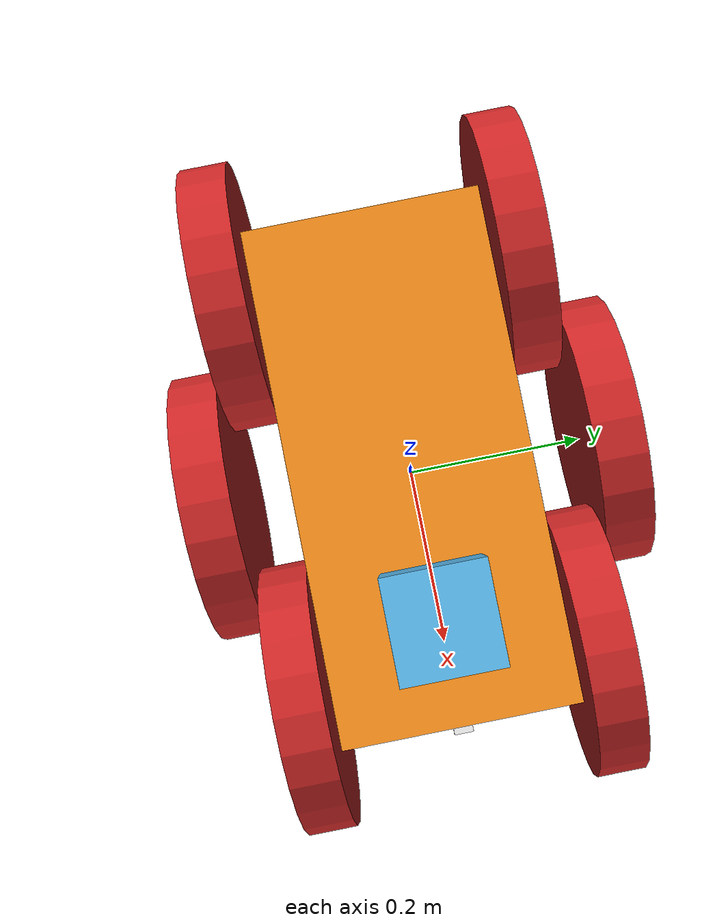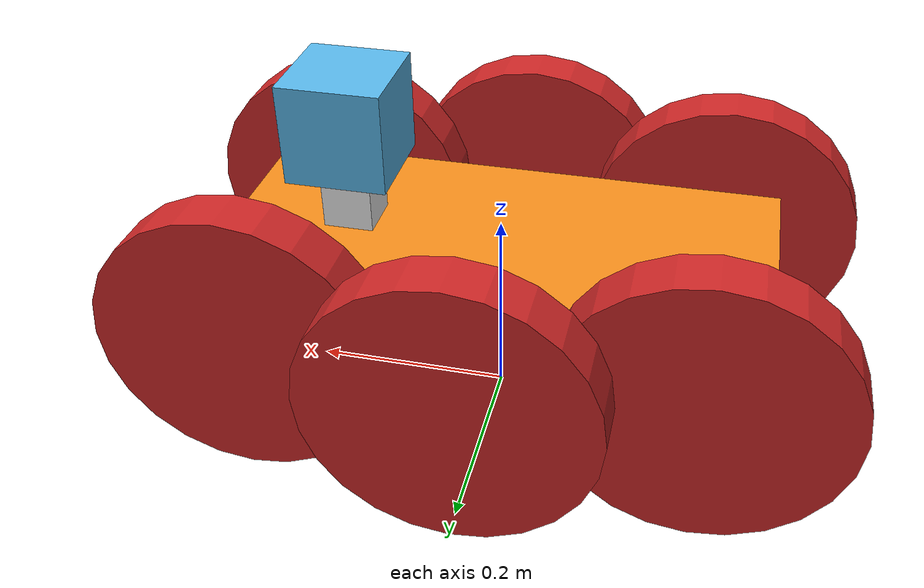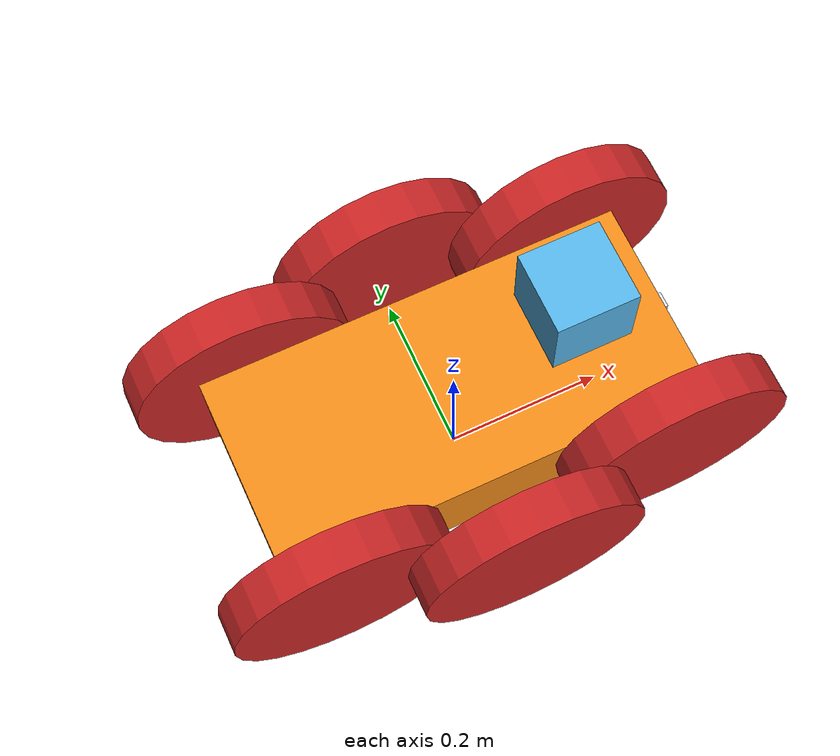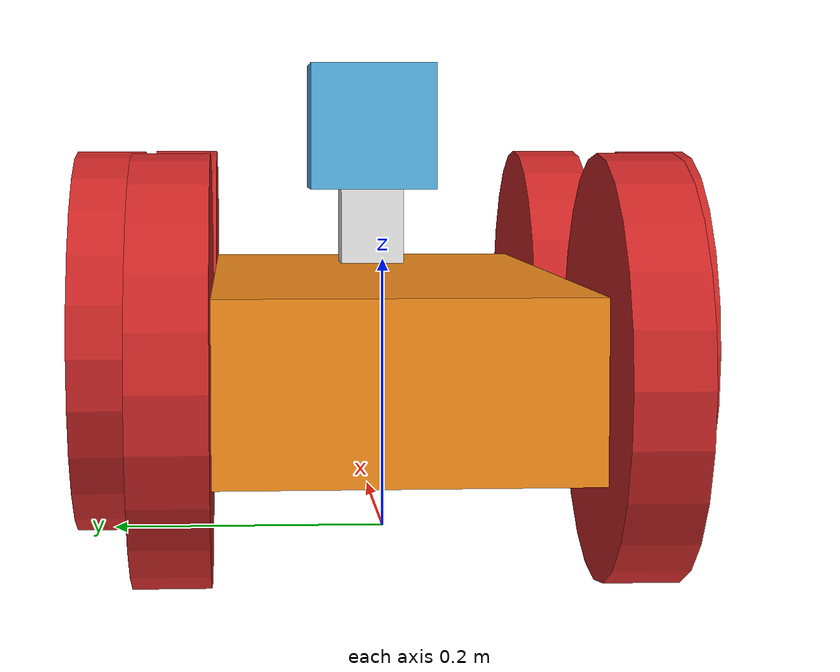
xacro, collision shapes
<?xml version='1.0'?>
<robot name="espeleo" xmlns:xacro="http://www.ros.org/wiki/xacro">

  <xacro:property name="PI" value="3.1415926535897931"/>

  <xacro:property name="chassisGround" value="0.13"/>
  <xacro:property name="chassisHeight" value="0.12"/>
  <xacro:property name="chassisLength" value="0.54"/>
  <xacro:property name="chassisWidth" value="0.25"/>
  <xacro:property name="chassisMass" value="0.5"/>

  <xacro:property name="wheelWidth" value="0.05"/>
  <xacro:property name="wheelRadius" value="0.14"/>
  <xacro:property name="wheelPos" value="0.214"/>
  <xacro:property name="wheelMass" value="0.2"/>

  <xacro:include filename="$(find espeleo_description)/urdf/espeleo.gazebo" />
  <xacro:include filename="$(find espeleo_description)/urdf/materials.xacro" />
  <xacro:include filename="$(find espeleo_description)/urdf/macros_espeleo.xacro" />

  <link name="robot_footprint" />

  <joint name="base_joint" type="fixed">
    <parent link="robot_footprint"/>
    <child link="chassis"/>
  </joint>

  <link name='chassis'>

    <collision>
      <origin xyz="0 0 ${chassisGround}" rpy="0 0 0"/>
      <geometry>
        <box size="${chassisLength} ${chassisWidth} ${chassisHeight}"/>
      </geometry>
    </collision>

    <visual>
      <origin xyz="0 0 ${chassisGround}" rpy="0 0 0"/>
      <geometry>
        <mesh filename="package://espeleo_description/urdf/stl/espeleorobo.stl" />
      </geometry>
      <material name="orange"/>
    </visual>

    <inertial>
      <origin xyz="0 0 ${chassisGround}" rpy="0 0 0"/>
      <mass value="${chassisMass}"/>
      <box_inertia m="${chassisMass}" x="${chassisLength}" y="${chassisWidth}" z="${chassisHeight}"/>
    </inertial>
  </link>

  <wheel lr="left_front" x_pos="${wheelPos}" y_pos="${wheelWidth/2+chassisWidth/2}" rot="0"/>
  <wheel lr="left_middle" x_pos="0.0" y_pos="${wheelWidth/2+chassisWidth/2+0.05}" rot="0"/>
  <wheel lr="left_back" x_pos="${-wheelPos}" y_pos="${wheelWidth/2+chassisWidth/2}" rot="0"/>
  <wheel lr="right_front" x_pos="${wheelPos}" y_pos="${-wheelWidth/2-chassisWidth/2}" rot="${PI}"/>
  <wheel lr="right_middle" x_pos="0.0" y_pos="${-wheelWidth/2-chassisWidth/2-0.05}" rot="${PI}"/>
  <wheel lr="right_back" x_pos="${-wheelPos}" y_pos="${-wheelWidth/2-chassisWidth/2}" rot="${PI}"/>

<xacro:property name="cameraSize" value="0.02"/>

  <xacro:property name="cameraMass" value="0.1"/>

  <!-- Camera -->

  <link name="camera">

    <collision>

      <origin xyz="0 0 0" rpy="0 0 0"/>

      <geometry>

        <box size="${cameraSize} ${cameraSize} ${cameraSize}"/>

      </geometry>

    </collision>

    <visual>

      <origin xyz="0 0 0" rpy="0 0 0"/>

      <geometry>

        <box size="${cameraSize} ${cameraSize} ${cameraSize}"/>

      </geometry>

      <material name="white"/>

    </visual>

    <inertial>

      <mass value="${cameraMass}" />

      <origin xyz="0 0 0" rpy="0 0 0"/>

      <box_inertia m="${cameraMass}" x="${cameraSize}" y="${cameraSize}" z="${cameraSize}" />

      <inertia ixx="1e-6" ixy="0" ixz="0" iyy="1e-6" iyz="0" izz="1e-6" />

    </inertial>

  </link>

  <joint name="camera_joint" type="fixed">

    <axis xyz="0 1 0" />

    <origin xyz=".27 0 0.16" rpy="0 0 0"/>

    <parent link="chassis"/>

    <child link="camera"/>

  </joint>

  <!-- Hokuyo Laser -->

  <joint name="hokuyo_joint" type="fixed">

    <axis xyz="0 1 0" />

    <origin xyz=".15 0 .3 " rpy="0 0 0"/>

    <parent link="chassis"/>

    <child link="hokuyo"/>

  </joint>

  <link name="hokuyo">

    <collision>

      <origin xyz="0 0 0" rpy="0 0 0"/>

      <geometry>

          <box size="0.1 0.1 0.1"/>

      </geometry>

    </collision>

    <visual>

      <origin xyz="0 0 0" rpy="0 0 0"/>

      <geometry>

          <mesh filename="package://espeleo_description/meshes/hokuyo.dae"/>

      </geometry>

    </visual>

    <inertial>

      <mass value="1e-5" />

      <origin xyz="0 0 0" rpy="0 0 0"/>

      <inertia ixx="1e-6" ixy="0" ixz="0" iyy="1e-6" iyz="0" izz="1e-6" />

    </inertial>

  </link>

  <!-- Hokuyo Laser Support -->

   <joint name="hokuyo_support_joint" type="fixed">
    <axis xyz="0 1 0" />
    <origin xyz=".15 0 .21 " rpy="0 0 0"/>
    <parent link="chassis"/>
    <child link="hokuyo_support"/>
  </joint>

  <link name="hokuyo_support">
    <collision>
      <origin xyz="0 0 0" rpy="0 0 0"/>
      <geometry>
          <box size="0.05 0.05 0.11"/>
      </geometry>
    </collision>

    <visual>
      <origin xyz="0 0 0" rpy="0 0 0"/>
      <geometry>
          <box size="0.05 0.05 0.11"/>
      </geometry>
      <material name="white"/>
    </visual>

  </link>

</robot>

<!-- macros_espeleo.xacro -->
<robot>
  <macro name="cylinder_inertia" params="m r h">
    <inertia
      ixx="${m*(3*r*r+h*h)/12}" ixy = "0" ixz = "0"
      iyy="${m*(3*r*r+h*h)/12}" iyz = "0"
      izz="${m*r*r/2}"
    />
  </macro>

  <macro name="box_inertia" params="m x y z">
    <inertia
      ixx="${m*(x*x+z*z)/12}" ixy = "0" ixz = "0"
      iyy="${m*(y*y+z*z)/12}" iyz = "0"
      izz="${m*(x*x+y*y)/12}"
    />
  </macro>

  <macro name="sphere_inertia" params="m r">
    <inertia
      ixx="${2*m*r*r/5}" ixy = "0" ixz = "0"
      iyy="${2*m*r*r/5}" iyz = "0"
      izz="${2*m*r*r/5}"
    />
  </macro>

  <!-- params = left/right XPosition YPosition -->
  <macro name="wheel" params="lr x_pos y_pos rot">
    <link name="${lr}_wheel">
      <collision>
        <origin xyz="0 0 0" rpy="${PI/2} 0 0" />
        <geometry>
          <cylinder length="${wheelWidth}" radius="${wheelRadius}"/>
        </geometry>
      </collision>

      <visual>
        <origin xyz="0 0 0" rpy="0 0 ${rot}" />
        <geometry>
          <mesh filename="package://espeleo_description/urdf/stl/roda_esquerda.stl" />
        </geometry>
        <material name="red"/>
      </visual>

      <inertial>
        <origin xyz="0 0 0" rpy="${PI/2} 0 0 " />
        <mass value="${wheelMass}"/>
        <cylinder_inertia m="${wheelMass}" r="${wheelRadius}" h="${wheelWidth}"/>
      </inertial>
    </link>

    <gazebo reference="${lr}_wheel">
      <mu1 value="1"/>
      <mu2 value="1"/>
      <kp  value="1000000.0" />
      <kd  value="10.0" />
      <fdir1 value="0 0 1"/>
      <minDepth>0.001</minDepth>
      <maxContacts>1</maxContacts>
      <material>Gazebo/Red</material>
    </gazebo>

    <joint name="${lr}_wheel_joint" type="continuous">
      <parent link="chassis"/>
      <child link="${lr}_wheel"/>
      <origin xyz="${x_pos} ${y_pos} ${wheelRadius}" rpy="0 0 0" />
      <axis xyz="0 1 0" rpy="0 0 0" />
      <limit effort="100" velocity="100"/>
      <joint_properties damping="0.0" friction="0.0"/>
    </joint>

    <transmission name="${lr}_trans">
      <type>transmission_interface/SimpleTransmission</type>
      <joint name="${lr}_wheel_joint">
        <hardwareInterface>EffortJointInterface</hardwareInterface>
      </joint>
      <actuator name="${lr}Motor">
        <hardwareInterface>EffortJointInterface</hardwareInterface>
        <mechanicalReduction>10</mechanicalReduction>
      </actuator>
    </transmission>
  </macro>

</robot>
